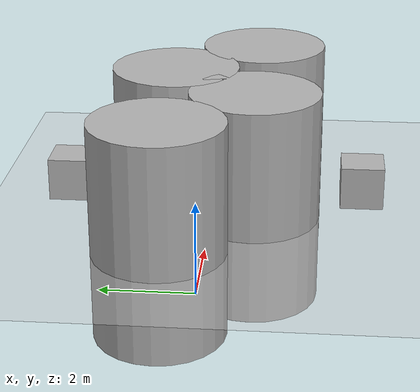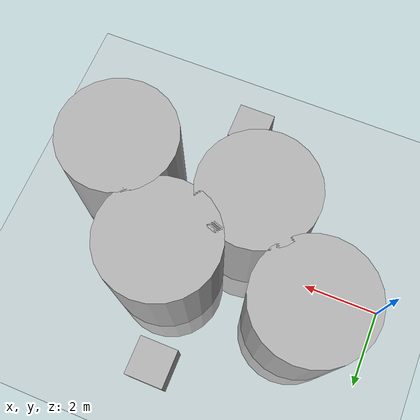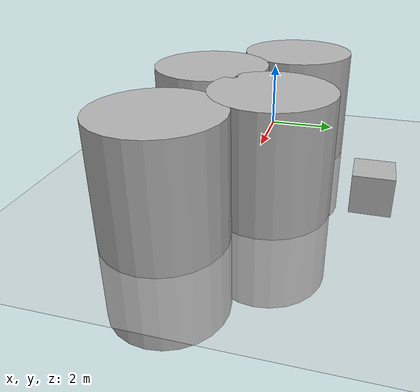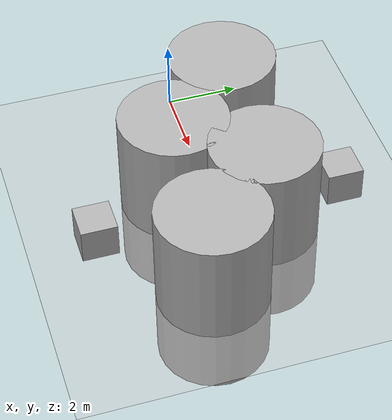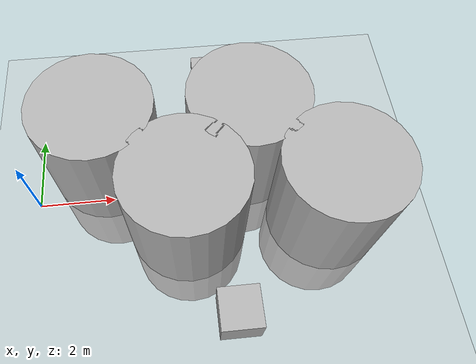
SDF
<sdf version='1.9'>
  <world name='demo'>
    <plugin name='ignition::gazebo::systems::Physics' filename='ignition-gazebo-physics-system'/>
    <plugin name='ignition::gazebo::systems::Sensors' filename='ignition-gazebo-sensors-system'>
      <render_engine>ogre2</render_engine>
    </plugin>
    <plugin name='ignition::gazebo::systems::SceneBroadcaster' filename='ignition-gazebo-scene-broadcaster-system'/>
    <plugin name='ignition::gazebo::systems::UserCommands' filename='ignition-gazebo-user-commands-system'/>
    <gravity>0 0 -9.8</gravity>
    <magnetic_field>6e-06 2.3e-05 -4.2e-05</magnetic_field>
    <atmosphere type='adiabatic'/>
    <physics type='ode'>
      <max_step_size>0.001</max_step_size>
      <real_time_factor>1</real_time_factor>
      <real_time_update_rate>1000</real_time_update_rate>
    </physics>
    <scene>
      <ambient>0.4 0.4 0.4 1</ambient>
      <background>0.7 0.7 0.7 1</background>
      <shadows>true</shadows>
    </scene>
    <model name='ground_plane'>
      <static>true</static>
      <link name='link'>
        <collision name='collision'>
          <geometry>
            <plane>
              <normal>0 0 1</normal>
              <size>100 100</size>
            </plane>
          </geometry>
          <surface>
            <friction>
              <ode/>
            </friction>
            <bounce/>
            <contact/>
          </surface>
        </collision>
        <visual name='visual'>
          <geometry>
            <plane>
              <normal>0 0 1</normal>
              <size>100 100</size>
            </plane>
          </geometry>
          <material>
            <ambient>0.8 0.8 0.8 1</ambient>
            <diffuse>0.8 0.8 0.8 1</diffuse>
            <specular>0.8 0.8 0.8 1</specular>
          </material>
        </visual>
        <pose>0 0 0 0 -0 0</pose>
        <inertial>
          <pose>0 0 0 0 -0 0</pose>
          <mass>1</mass>
          <inertia>
            <ixx>1</ixx>
            <ixy>0</ixy>
            <ixz>0</ixz>
            <iyy>1</iyy>
            <iyz>0</iyz>
            <izz>1</izz>
          </inertia>
        </inertial>
        <enable_wind>false</enable_wind>
      </link>
      <pose>0 0 0 0 -0 0</pose>
      <self_collide>false</self_collide>
    </model>

    <model name='cylinder'>
      <pose>1.87636 0.99726 0.5 0 -0 0</pose>
      <link name='cylinder_link'>
        <inertial>
          <inertia>
            <ixx>0.14580000000000001</ixx>
            <ixy>0</ixy>
            <ixz>0</ixz>
            <iyy>0.14580000000000001</iyy>
            <iyz>0</iyz>
            <izz>0.125</izz>
          </inertia>
          <mass>1</mass>
          <pose>0 0 0 0 -0 0</pose>
        </inertial>
        <collision name='cylinder_collision'>
          <geometry>
            <cylinder>
              <radius>1.5</radius>
              <length>5</length>
            </cylinder>
          </geometry>
          <surface>
            <friction>
              <ode/>
            </friction>
            <bounce/>
            <contact/>
          </surface>
        </collision>
        <visual name='cylinder_visual'>
          <geometry>
            <cylinder>
              <radius>1.5</radius>
              <length>5</length>
            </cylinder>
          </geometry>
          <material>
            <ambient>0.3 0.3 0.3 1</ambient>
            <diffuse>0.7 0.7 0.7 1</diffuse>
            <specular>1 1 1 1</specular>
          </material>
        </visual>
        <pose>0 0 0 0 -0 0</pose>
        <enable_wind>false</enable_wind>
      </link>
      <static>false</static>
      <self_collide>false</self_collide>
    </model>
    <model name='cylinder_0'>
      <pose>3.91285 -0.958088 0.5 0 -0 0</pose>
      <link name='cylinder_link'>
        <inertial>
          <inertia>
            <ixx>0.14580000000000001</ixx>
            <ixy>0</ixy>
            <ixz>0</ixz>
            <iyy>0.14580000000000001</iyy>
            <iyz>0</iyz>
            <izz>0.125</izz>
          </inertia>
          <mass>1</mass>
          <pose>0 0 0 0 -0 0</pose>
        </inertial>
        <collision name='cylinder_collision'>
          <geometry>
            <cylinder>
              <radius>1.5</radius>
              <length>5</length>
            </cylinder>
          </geometry>
          <surface>
            <friction>
              <ode/>
            </friction>
            <bounce/>
            <contact/>
          </surface>
        </collision>
        <visual name='cylinder_visual'>
          <geometry>
            <cylinder>
              <radius>1.5</radius>
              <length>5</length>
            </cylinder>
          </geometry>
          <material>
            <ambient>0.3 0.3 0.3 1</ambient>
            <diffuse>0.7 0.7 0.7 1</diffuse>
            <specular>1 1 1 1</specular>
          </material>
        </visual>
        <pose>0 0 0 0 -0 0</pose>
        <enable_wind>false</enable_wind>
      </link>
      <static>false</static>
      <self_collide>false</self_collide>
    </model>
    <model name='cylinder_1'>
      <pose>5.58703 0.996694 0.5 0 0 0</pose>
      <link name='cylinder_link'>
        <inertial>
          <inertia>
            <ixx>0.14580000000000001</ixx>
            <ixy>0</ixy>
            <ixz>0</ixz>
            <iyy>0.14580000000000001</iyy>
            <iyz>0</iyz>
            <izz>0.125</izz>
          </inertia>
          <mass>1</mass>
          <pose>0 0 0 0 -0 0</pose>
        </inertial>
        <collision name='cylinder_collision'>
          <geometry>
            <cylinder>
              <radius>1.5</radius>
              <length>5</length>
            </cylinder>
          </geometry>
          <surface>
            <friction>
              <ode/>
            </friction>
            <bounce/>
            <contact/>
          </surface>
        </collision>
        <visual name='cylinder_visual'>
          <geometry>
            <cylinder>
              <radius>1.5</radius>
              <length>5</length>
            </cylinder>
          </geometry>
          <material>
            <ambient>0.3 0.3 0.3 1</ambient>
            <diffuse>0.7 0.7 0.7 1</diffuse>
            <specular>1 1 1 1</specular>
          </material>
        </visual>
        <pose>0 0 0 0 -0 0</pose>
        <enable_wind>false</enable_wind>
      </link>
      <static>false</static>
      <self_collide>false</self_collide>
    </model>
    <model name='cylinder_2'>
      <pose>7.49777 -0.99438 0.5 0 -0 0</pose>
      <link name='cylinder_link'>
        <inertial>
          <inertia>
            <ixx>0.14580000000000001</ixx>
            <ixy>0</ixy>
            <ixz>0</ixz>
            <iyy>0.14580000000000001</iyy>
            <iyz>0</iyz>
            <izz>0.125</izz>
          </inertia>
          <mass>1</mass>
          <pose>0 0 0 0 -0 0</pose>
        </inertial>
        <collision name='cylinder_collision'>
          <geometry>
            <cylinder>
              <radius>1.5</radius>
              <length>5</length>
            </cylinder>
          </geometry>
          <surface>
            <friction>
              <ode/>
            </friction>
            <bounce/>
            <contact/>
          </surface>
        </collision>
        <visual name='cylinder_visual'>
          <geometry>
            <cylinder>
              <radius>1.5</radius>
              <length>5</length>
            </cylinder>
          </geometry>
          <material>
            <ambient>0.3 0.3 0.3 1</ambient>
            <diffuse>0.7 0.7 0.7 1</diffuse>
            <specular>1 1 1 1</specular>
          </material>
        </visual>
        <pose>0 0 0 0 -0 0</pose>
        <enable_wind>false</enable_wind>
      </link>
      <static>false</static>
      <self_collide>false</self_collide>
    </model>
    <model name='box'>
      <pose>4.89317 3.43254 0.5 0 -0 0</pose>
      <link name='box_link'>
        <inertial>
          <inertia>
            <ixx>0.16666</ixx>
            <ixy>0</ixy>
            <ixz>0</ixz>
            <iyy>0.16666</iyy>
            <iyz>0</iyz>
            <izz>0.16666</izz>
          </inertia>
          <mass>1</mass>
          <pose>0 0 0 0 -0 0</pose>
        </inertial>
        <collision name='box_collision'>
          <geometry>
            <box>
              <size>1 1 1</size>
            </box>
          </geometry>
          <surface>
            <friction>
              <ode/>
            </friction>
            <bounce/>
            <contact/>
          </surface>
        </collision>
        <visual name='box_visual'>
          <geometry>
            <box>
              <size>1 1 1</size>
            </box>
          </geometry>
          <material>
            <ambient>0.3 0.3 0.3 1</ambient>
            <diffuse>0.7 0.7 0.7 1</diffuse>
            <specular>1 1 1 1</specular>
          </material>
        </visual>
        <pose>0 0 0 0 -0 0</pose>
        <enable_wind>false</enable_wind>
      </link>
      <static>false</static>
      <self_collide>false</self_collide>
    </model>
    <model name='box_0'>
      <pose>4.93073 -3.4489 0.5 0 -0 0</pose>
      <link name='box_link'>
        <inertial>
          <inertia>
            <ixx>0.16666</ixx>
            <ixy>0</ixy>
            <ixz>0</ixz>
            <iyy>0.16666</iyy>
            <iyz>0</iyz>
            <izz>0.16666</izz>
          </inertia>
          <mass>1</mass>
          <pose>0 0 0 0 -0 0</pose>
        </inertial>
        <collision name='box_collision'>
          <geometry>
            <box>
              <size>1 1 1</size>
            </box>
          </geometry>
          <surface>
            <friction>
              <ode/>
            </friction>
            <bounce/>
            <contact/>
          </surface>
        </collision>
        <visual name='box_visual'>
          <geometry>
            <box>
              <size>1 1 1</size>
            </box>
          </geometry>
          <material>
            <ambient>0.3 0.3 0.3 1</ambient>
            <diffuse>0.7 0.7 0.7 1</diffuse>
            <specular>1 1 1 1</specular>
          </material>
        </visual>
        <pose>0 0 0 0 -0 0</pose>
        <enable_wind>false</enable_wind>
      </link>
      <static>false</static>
      <self_collide>false</self_collide>
    </model>
    <light name='sun' type='directional'>
      <pose>0 0 10 0 -0 0</pose>
      <cast_shadows>true</cast_shadows>
      <intensity>1</intensity>
      <direction>-0.5 0.1 -0.9</direction>
      <diffuse>1 1 1 1</diffuse>
      <specular>0.1 0.1 0.1 1</specular>
      <attenuation>
        <range>10</range>
        <linear>1</linear>
        <constant>1</constant>
        <quadratic>0</quadratic>
      </attenuation>
      <spot>
        <inner_angle>0</inner_angle>
        <outer_angle>0</outer_angle>
        <falloff>0</falloff>
      </spot>
    </light>
  </world>
</sdf>
